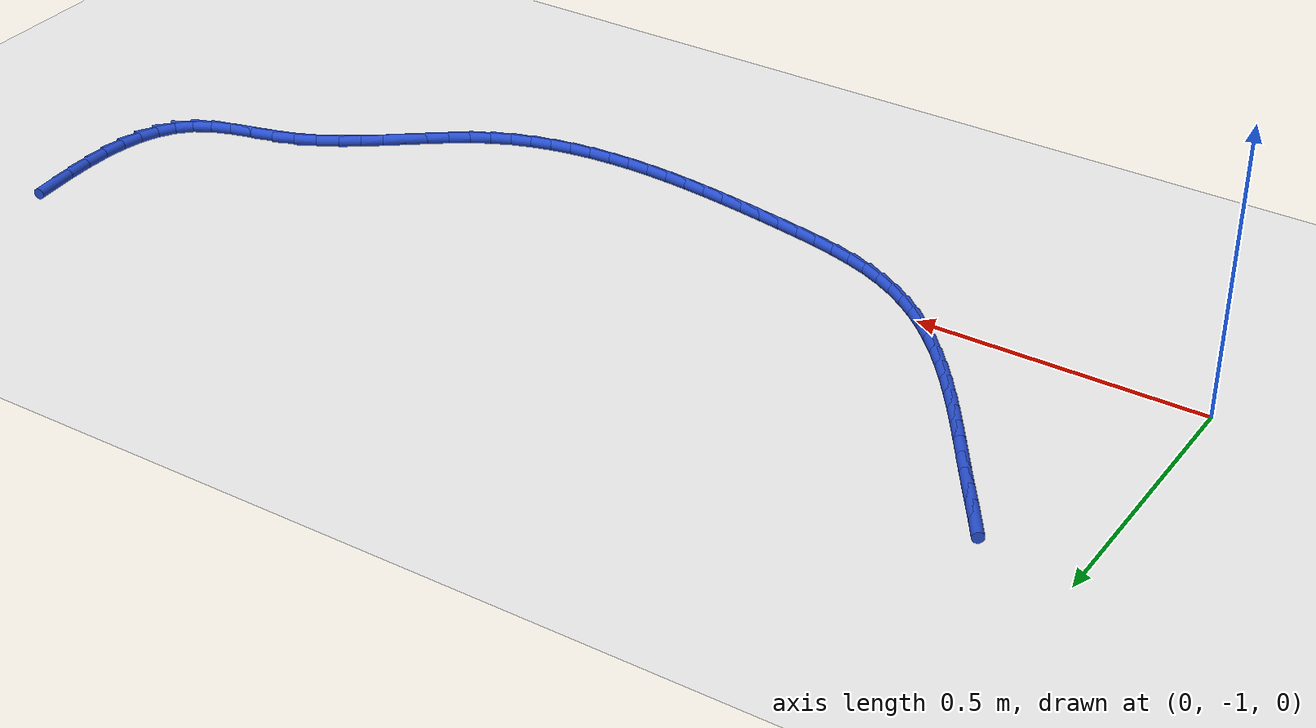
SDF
<sdf version="1.6">
 <world name="default">
  <model name="ground_plane">
   <static>1</static>
   <link name="link">
    <collision name="collision">
     <geometry><plane><normal>0 0 1</normal><size>100 100</size></plane></geometry>
     <surface><friction><ode><mu>100</mu><mu2>50</mu2></ode></friction></surface>
    </collision>
    <visual name="visual">
     <cast_shadows>0</cast_shadows>
     <geometry><plane><normal>0 0 1</normal><size>100 100</size></plane></geometry>
     <material>
      <script><uri>file://media/materials/scripts/gazebo.material</uri><name>Gazebo/WhiteGlow</name></script>
     </material>
    </visual>
   </link>
  </model>
  <model name="line">
   <link name="link_105">
    <pose>1.9537092161042269 -0.5545533523997194 0.01 0 1.57 -1.4996280599639598</pose>
    <collision name="collision">
     <geometry><cylinder><radius>0.01</radius><length>0.08</length></cylinder></geometry>
    </collision>
    <visual name="visual">
     <material>
      <script><name>Gazebo/Blue</name><uri>file://media/materials/scripts/gazebo.material</uri></script>
     </material>
     <geometry><cylinder><radius>0.01</radius><length>0.08</length></cylinder></geometry>
    </visual>
   </link>
   <link name="link_106">
    <pose>1.9569999282625978 -0.6007137367128573 0.01 0 1.57 -1.5370643470147378</pose>
    <collision name="collision">
     <geometry><cylinder><radius>0.01</radius><length>0.08</length></cylinder></geometry>
    </collision>
    <visual name="visual">
     <material>
      <script><name>Gazebo/Blue</name><uri>file://media/materials/scripts/gazebo.material</uri></script>
     </material>
     <geometry><cylinder><radius>0.01</radius><length>0.08</length></cylinder></geometry>
    </visual>
   </link>
   <link name="link_107">
    <pose>1.958518859675089 -0.6457260744144714 0.01 0 1.57 1.549415511046586</pose>
    <collision name="collision">
     <geometry><cylinder><radius>0.01</radius><length>0.08</length></cylinder></geometry>
    </collision>
    <visual name="visual">
     <material>
      <script><name>Gazebo/Blue</name><uri>file://media/materials/scripts/gazebo.material</uri></script>
     </material>
     <geometry><cylinder><radius>0.01</radius><length>0.08</length></cylinder></geometry>
    </visual>
   </link>
   <link name="link_108">
    <pose>1.957595295141753 -0.6889154366621365 0.01 0 1.57 1.4719153614329552</pose>
    <collision name="collision">
     <geometry><cylinder><radius>0.01</radius><length>0.08</length></cylinder></geometry>
    </collision>
    <visual name="visual">
     <material>
      <script><name>Gazebo/Blue</name><uri>file://media/materials/scripts/gazebo.material</uri></script>
     </material>
     <geometry><cylinder><radius>0.01</radius><length>0.08</length></cylinder></geometry>
    </visual>
   </link>
   <link name="link_109">
    <pose>1.9535585194626406 -0.7296068946134282 0.01 0 1.57 1.3652905395663109</pose>
    <collision name="collision">
     <geometry><cylinder><radius>0.01</radius><length>0.08</length></cylinder></geometry>
    </collision>
    <visual name="visual">
     <material>
      <script><name>Gazebo/Blue</name><uri>file://media/materials/scripts/gazebo.material</uri></script>
     </material>
     <geometry><cylinder><radius>0.01</radius><length>0.08</length></cylinder></geometry>
    </visual>
   </link>
   <link name="link_110">
    <pose>1.9457378174378044 -0.7671255194259193 0.01 0 1.57 1.221202096453875</pose>
    <collision name="collision">
     <geometry><cylinder><radius>0.01</radius><length>0.08</length></cylinder></geometry>
    </collision>
    <visual name="visual">
     <material>
      <script><name>Gazebo/Blue</name><uri>file://media/materials/scripts/gazebo.material</uri></script>
     </material>
     <geometry><cylinder><radius>0.01</radius><length>0.08</length></cylinder></geometry>
    </visual>
   </link>
   <link name="link_111">
    <pose>1.933462473867296 -0.8007963822571856 0.01 0 1.57 1.0326048103348477</pose>
    <collision name="collision">
     <geometry><cylinder><radius>0.01</radius><length>0.08</length></cylinder></geometry>
    </collision>
    <visual name="visual">
     <material>
      <script><name>Gazebo/Blue</name><uri>file://media/materials/scripts/gazebo.material</uri></script>
     </material>
     <geometry><cylinder><radius>0.01</radius><length>0.08</length></cylinder></geometry>
    </visual>
   </link>
   <link name="link_112">
    <pose>1.9160617735511676 -0.829944554264802 0.01 0 1.57 0.8013845607561361</pose>
    <collision name="collision">
     <geometry><cylinder><radius>0.01</radius><length>0.08</length></cylinder></geometry>
    </collision>
    <visual name="visual">
     <material>
      <script><name>Gazebo/Blue</name><uri>file://media/materials/scripts/gazebo.material</uri></script>
     </material>
     <geometry><cylinder><radius>0.01</radius><length>0.08</length></cylinder></geometry>
    </visual>
   </link>
   <link name="link_113">
    <pose>1.8928650012894708 -0.8538951066063429 0.01 0 1.57 0.5511537409102386</pose>
    <collision name="collision">
     <geometry><cylinder><radius>0.01</radius><length>0.08</length></cylinder></geometry>
    </collision>
    <visual name="visual">
     <material>
      <script><name>Gazebo/Blue</name><uri>file://media/materials/scripts/gazebo.material</uri></script>
     </material>
     <geometry><cylinder><radius>0.01</radius><length>0.08</length></cylinder></geometry>
    </visual>
   </link>
   <link name="link_114">
    <pose>1.8632935317076493 -0.8720725046539215 0.01 0 1.57 0.3651560343890318</pose>
    <collision name="collision">
     <geometry><cylinder><radius>0.01</radius><length>0.08</length></cylinder></geometry>
    </collision>
    <visual name="visual">
     <material>
      <script><name>Gazebo/Blue</name><uri>file://media/materials/scripts/gazebo.material</uri></script>
     </material>
     <geometry><cylinder><radius>0.01</radius><length>0.08</length></cylinder></geometry>
    </visual>
   </link>
   <link name="link_115">
    <pose>1.8282292783263292 -0.8854775998317526 0.01 0 1.57 0.2757150280657331</pose>
    <collision name="collision">
     <geometry><cylinder><radius>0.01</radius><length>0.08</length></cylinder></geometry>
    </collision>
    <visual name="visual">
     <material>
      <script><name>Gazebo/Blue</name><uri>file://media/materials/scripts/gazebo.material</uri></script>
     </material>
     <geometry><cylinder><radius>0.01</radius><length>0.08</length></cylinder></geometry>
    </visual>
   </link>
   <link name="link_116">
    <pose>1.7897222838180509 -0.8963720264902746 0.01 0 1.57 0.26176067926341967</pose>
    <collision name="collision">
     <geometry><cylinder><radius>0.01</radius><length>0.08</length></cylinder></geometry>
    </collision>
    <visual name="visual">
     <material>
      <script><name>Gazebo/Blue</name><uri>file://media/materials/scripts/gazebo.material</uri></script>
     </material>
     <geometry><cylinder><radius>0.01</radius><length>0.08</length></cylinder></geometry>
    </visual>
   </link>
   <link name="link_117">
    <pose>1.7498552822493372 -0.9070527033928704 0.01 0 1.57 0.31519595091957764</pose>
    <collision name="collision">
     <geometry><cylinder><radius>0.01</radius><length>0.08</length></cylinder></geometry>
    </collision>
    <visual name="visual">
     <material>
      <script><name>Gazebo/Blue</name><uri>file://media/materials/scripts/gazebo.material</uri></script>
     </material>
     <geometry><cylinder><radius>0.01</radius><length>0.08</length></cylinder></geometry>
    </visual>
   </link>
   <link name="link_118">
    <pose>1.7107108662607275 -0.919816374921484 0.01 0 1.57 0.4209795425568214</pose>
    <collision name="collision">
     <geometry><cylinder><radius>0.01</radius><length>0.08</length></cylinder></geometry>
    </collision>
    <visual name="visual">
     <material>
      <script><name>Gazebo/Blue</name><uri>file://media/materials/scripts/gazebo.material</uri></script>
     </material>
     <geometry><cylinder><radius>0.01</radius><length>0.08</length></cylinder></geometry>
    </visual>
   </link>
   <link name="link_119">
    <pose>1.6738524670407415 -0.9363196476366297 0.01 0 1.57 0.5189352445405284</pose>
    <collision name="collision">
     <geometry><cylinder><radius>0.01</radius><length>0.08</length></cylinder></geometry>
    </collision>
    <visual name="visual">
     <material>
      <script><name>Gazebo/Blue</name><uri>file://media/materials/scripts/gazebo.material</uri></script>
     </material>
     <geometry><cylinder><radius>0.01</radius><length>0.08</length></cylinder></geometry>
    </visual>
   </link>
   <link name="link_120">
    <pose>1.6391549540789039 -0.9561370933037838 0.01 0 1.57 0.5938663120360742</pose>
    <collision name="collision">
     <geometry><cylinder><radius>0.01</radius><length>0.08</length></cylinder></geometry>
    </collision>
    <visual name="visual">
     <material>
      <script><name>Gazebo/Blue</name><uri>file://media/materials/scripts/gazebo.material</uri></script>
     </material>
     <geometry><cylinder><radius>0.01</radius><length>0.08</length></cylinder></geometry>
    </visual>
   </link>
   <link name="link_121">
    <pose>1.606150486080211 -0.9784207135339213 0.01 0 1.57 0.6448560486632581</pose>
    <collision name="collision">
     <geometry><cylinder><radius>0.01</radius><length>0.08</length></cylinder></geometry>
    </collision>
    <visual name="visual">
     <material>
      <script><name>Gazebo/Blue</name><uri>file://media/materials/scripts/gazebo.material</uri></script>
     </material>
     <geometry><cylinder><radius>0.01</radius><length>0.08</length></cylinder></geometry>
    </visual>
   </link>
   <link name="link_122">
    <pose>1.5743712217496537 -1.002322509938017 0.01 0 1.57 0.6718735571702174</pose>
    <collision name="collision">
     <geometry><cylinder><radius>0.01</radius><length>0.08</length></cylinder></geometry>
    </collision>
    <visual name="visual">
     <material>
      <script><name>Gazebo/Blue</name><uri>file://media/materials/scripts/gazebo.material</uri></script>
     </material>
     <geometry><cylinder><radius>0.01</radius><length>0.08</length></cylinder></geometry>
    </visual>
   </link>
   <link name="link_123">
    <pose>1.5433493197922268 -1.026994484127047 0.01 0 1.57 0.674904585492525</pose>
    <collision name="collision">
     <geometry><cylinder><radius>0.01</radius><length>0.08</length></cylinder></geometry>
    </collision>
    <visual name="visual">
     <material>
      <script><name>Gazebo/Blue</name><uri>file://media/materials/scripts/gazebo.material</uri></script>
     </material>
     <geometry><cylinder><radius>0.01</radius><length>0.08</length></cylinder></geometry>
    </visual>
   </link>
   <link name="link_124">
    <pose>1.5126169389129236 -1.0515886377119859 0.01 0 1.57 0.6534738423226523</pose>
    <collision name="collision">
     <geometry><cylinder><radius>0.01</radius><length>0.08</length></cylinder></geometry>
    </collision>
    <visual name="visual">
     <material>
      <script><name>Gazebo/Blue</name><uri>file://media/materials/scripts/gazebo.material</uri></script>
     </material>
     <geometry><cylinder><radius>0.01</radius><length>0.08</length></cylinder></geometry>
    </visual>
   </link>
   <link name="link_125">
    <pose>1.4817062378167367 -1.0752569723038086 0.01 0 1.57 0.606560587091664</pose>
    <collision name="collision">
     <geometry><cylinder><radius>0.01</radius><length>0.08</length></cylinder></geometry>
    </collision>
    <visual name="visual">
     <material>
      <script><name>Gazebo/Blue</name><uri>file://media/materials/scripts/gazebo.material</uri></script>
     </material>
     <geometry><cylinder><radius>0.01</radius><length>0.08</length></cylinder></geometry>
    </visual>
   </link>
   <link name="link_126">
    <pose>1.4501493752086605 -1.0971514895134915 0.01 0 1.57 0.5330054640662755</pose>
    <collision name="collision">
     <geometry><cylinder><radius>0.01</radius><length>0.08</length></cylinder></geometry>
    </collision>
    <visual name="visual">
     <material>
      <script><name>Gazebo/Blue</name><uri>file://media/materials/scripts/gazebo.material</uri></script>
     </material>
     <geometry><cylinder><radius>0.01</radius><length>0.08</length></cylinder></geometry>
    </visual>
   </link>
   <link name="link_127">
    <pose>1.4174792949512058 -1.116425575239351 0.01 0 1.57 0.44146334268047427</pose>
    <collision name="collision">
     <geometry><cylinder><radius>0.01</radius><length>0.08</length></cylinder></geometry>
    </collision>
    <visual name="visual">
     <material>
      <script><name>Gazebo/Blue</name><uri>file://media/materials/scripts/gazebo.material</uri></script>
     </material>
     <geometry><cylinder><radius>0.01</radius><length>0.08</length></cylinder></geometry>
    </visual>
   </link>
   <link name="link_128">
    <pose>1.383398301954618 -1.1325312106930743 0.01 0 1.57 0.35328895639652336</pose>
    <collision name="collision">
     <geometry><cylinder><radius>0.01</radius><length>0.08</length></cylinder></geometry>
    </collision>
    <visual name="visual">
     <material>
      <script><name>Gazebo/Blue</name><uri>file://media/materials/scripts/gazebo.material</uri></script>
     </material>
     <geometry><cylinder><radius>0.01</radius><length>0.08</length></cylinder></geometry>
    </visual>
   </link>
   <link name="link_129">
    <pose>1.3479880059953808 -1.1455891179621889 0.01 0 1.57 0.2722986784520512</pose>
    <collision name="collision">
     <geometry><cylinder><radius>0.01</radius><length>0.08</length></cylinder></geometry>
    </collision>
    <visual name="visual">
     <material>
      <script><name>Gazebo/Blue</name><uri>file://media/materials/scripts/gazebo.material</uri></script>
     </material>
     <geometry><cylinder><radius>0.01</radius><length>0.08</length></cylinder></geometry>
    </visual>
   </link>
   <link name="link_130">
    <pose>1.3113815628900756 -1.1558108983901172 0.01 0 1.57 0.19901254862862905</pose>
    <collision name="collision">
     <geometry><cylinder><radius>0.01</radius><length>0.08</length></cylinder></geometry>
    </collision>
    <visual name="visual">
     <material>
      <script><name>Gazebo/Blue</name><uri>file://media/materials/scripts/gazebo.material</uri></script>
     </material>
     <geometry><cylinder><radius>0.01</radius><length>0.08</length></cylinder></geometry>
    </visual>
   </link>
   <link name="link_131">
    <pose>1.2737121284552817 -1.1634081533202816 0.01 0 1.57 0.13351261511136386</pose>
    <collision name="collision">
     <geometry><cylinder><radius>0.01</radius><length>0.08</length></cylinder></geometry>
    </collision>
    <visual name="visual">
     <material>
      <script><name>Gazebo/Blue</name><uri>file://media/materials/scripts/gazebo.material</uri></script>
     </material>
     <geometry><cylinder><radius>0.01</radius><length>0.08</length></cylinder></geometry>
    </visual>
   </link>
   <link name="link_132">
    <pose>1.235112858507581 -1.168592484096103 0.01 0 1.57 0.07557443551612951</pose>
    <collision name="collision">
     <geometry><cylinder><radius>0.01</radius><length>0.08</length></cylinder></geometry>
    </collision>
    <visual name="visual">
     <material>
      <script><name>Gazebo/Blue</name><uri>file://media/materials/scripts/gazebo.material</uri></script>
     </material>
     <geometry><cylinder><radius>0.01</radius><length>0.08</length></cylinder></geometry>
    </visual>
   </link>
   <link name="link_133">
    <pose>1.1957169088635544 -1.171575492061004 0.01 0 1.57 0.024790216280307194</pose>
    <collision name="collision">
     <geometry><cylinder><radius>0.01</radius><length>0.08</length></cylinder></geometry>
    </collision>
    <visual name="visual">
     <material>
      <script><name>Gazebo/Blue</name><uri>file://media/materials/scripts/gazebo.material</uri></script>
     </material>
     <geometry><cylinder><radius>0.01</radius><length>0.08</length></cylinder></geometry>
    </visual>
   </link>
   <link name="link_134">
    <pose>1.1556574353397815 -1.1725687785584065 0.01 0 1.57 -0.019333306299664867</pose>
    <collision name="collision">
     <geometry><cylinder><radius>0.01</radius><length>0.08</length></cylinder></geometry>
    </collision>
    <visual name="visual">
     <material>
      <script><name>Gazebo/Blue</name><uri>file://media/materials/scripts/gazebo.material</uri></script>
     </material>
     <geometry><cylinder><radius>0.01</radius><length>0.08</length></cylinder></geometry>
    </visual>
   </link>
   <link name="link_135">
    <pose>1.1150675937528438 -1.1717839449317318 0.01 0 1.57 -0.05730536234467141</pose>
    <collision name="collision">
     <geometry><cylinder><radius>0.01</radius><length>0.08</length></cylinder></geometry>
    </collision>
    <visual name="visual">
     <material>
      <script><name>Gazebo/Blue</name><uri>file://media/materials/scripts/gazebo.material</uri></script>
     </material>
     <geometry><cylinder><radius>0.01</radius><length>0.08</length></cylinder></geometry>
    </visual>
   </link>
   <link name="link_136">
    <pose>1.0740805399193214 -1.1694325925244025 0.01 0 1.57 -0.08960595274840165</pose>
    <collision name="collision">
     <geometry><cylinder><radius>0.01</radius><length>0.08</length></cylinder></geometry>
    </collision>
    <visual name="visual">
     <material>
      <script><name>Gazebo/Blue</name><uri>file://media/materials/scripts/gazebo.material</uri></script>
     </material>
     <geometry><cylinder><radius>0.01</radius><length>0.08</length></cylinder></geometry>
    </visual>
   </link>
   <link name="link_137">
    <pose>1.0328294296557947 -1.1657263226798402 0.01 0 1.57 -0.11665857102441952</pose>
    <collision name="collision">
     <geometry><cylinder><radius>0.01</radius><length>0.08</length></cylinder></geometry>
    </collision>
    <visual name="visual">
     <material>
      <script><name>Gazebo/Blue</name><uri>file://media/materials/scripts/gazebo.material</uri></script>
     </material>
     <geometry><cylinder><radius>0.01</radius><length>0.08</length></cylinder></geometry>
    </visual>
   </link>
   <link name="link_138">
    <pose>0.9914474187788457 -1.1608767367414674 0.01 0 1.57 -0.13881470546060395</pose>
    <collision name="collision">
     <geometry><cylinder><radius>0.01</radius><length>0.08</length></cylinder></geometry>
    </collision>
    <visual name="visual">
     <material>
      <script><name>Gazebo/Blue</name><uri>file://media/materials/scripts/gazebo.material</uri></script>
     </material>
     <geometry><cylinder><radius>0.01</radius><length>0.08</length></cylinder></geometry>
    </visual>
   </link>
   <link name="link_139">
    <pose>0.9500676631050541 -1.155095436052705 0.01 0 1.57 -0.15634517902697484</pose>
    <collision name="collision">
     <geometry><cylinder><radius>0.01</radius><length>0.08</length></cylinder></geometry>
    </collision>
    <visual name="visual">
     <material>
      <script><name>Gazebo/Blue</name><uri>file://media/materials/scripts/gazebo.material</uri></script>
     </material>
     <geometry><cylinder><radius>0.01</radius><length>0.08</length></cylinder></geometry>
    </visual>
   </link>
   <link name="link_140">
    <pose>0.9088233184510008 -1.1485940219569757 0.01 0 1.57 -0.16943465707100916</pose>
    <collision name="collision">
     <geometry><cylinder><radius>0.01</radius><length>0.08</length></cylinder></geometry>
    </collision>
    <visual name="visual">
     <material>
      <script><name>Gazebo/Blue</name><uri>file://media/materials/scripts/gazebo.material</uri></script>
     </material>
     <geometry><cylinder><radius>0.01</radius><length>0.08</length></cylinder></geometry>
    </visual>
   </link>
   <link name="link_141">
    <pose>0.8678475406332669 -1.1415840957977015 0.01 0 1.57 -0.17841436752566503</pose>
    <collision name="collision">
     <geometry><cylinder><radius>0.01</radius><length>0.08</length></cylinder></geometry>
    </collision>
    <visual name="visual">
     <material>
      <script><name>Gazebo/Blue</name><uri>file://media/materials/scripts/gazebo.material</uri></script>
     </material>
     <geometry><cylinder><radius>0.01</radius><length>0.08</length></cylinder></geometry>
    </visual>
   </link>
   <link name="link_142">
    <pose>0.8272743501418509 -1.1342674567760076 0.01 0 1.57 -0.19027052335182737</pose>
    <collision name="collision">
     <geometry><cylinder><radius>0.01</radius><length>0.08</length></cylinder></geometry>
    </collision>
    <visual name="visual">
     <material>
      <script><name>Gazebo/Blue</name><uri>file://media/materials/scripts/gazebo.material</uri></script>
     </material>
     <geometry><cylinder><radius>0.01</radius><length>0.08</length></cylinder></geometry>
    </visual>
   </link>
   <link name="link_143">
    <pose>0.7872628791422078 -1.1265612322036818 0.01 0 1.57 -0.2132212050335201</pose>
    <collision name="collision">
     <geometry><cylinder><radius>0.01</radius><length>0.08</length></cylinder></geometry>
    </collision>
    <visual name="visual">
     <material>
      <script><name>Gazebo/Blue</name><uri>file://media/materials/scripts/gazebo.material</uri></script>
     </material>
     <geometry><cylinder><radius>0.01</radius><length>0.08</length></cylinder></geometry>
    </visual>
   </link>
   <link name="link_144">
    <pose>0.7480006703603296 -1.118060480561943 0.01 0 1.57 -0.24832975518132386</pose>
    <collision name="collision">
     <geometry><cylinder><radius>0.01</radius><length>0.08</length></cylinder></geometry>
    </collision>
    <visual name="visual">
     <material>
      <script><name>Gazebo/Blue</name><uri>file://media/materials/scripts/gazebo.material</uri></script>
     </material>
     <geometry><cylinder><radius>0.01</radius><length>0.08</length></cylinder></geometry>
    </visual>
   </link>
   <link name="link_145">
    <pose>0.7096767941251361 -1.108342943064109 0.01 0 1.57 -0.29632432621645266</pose>
    <collision name="collision">
     <geometry><cylinder><radius>0.01</radius><length>0.08</length></cylinder></geometry>
    </collision>
    <visual name="visual">
     <material>
      <script><name>Gazebo/Blue</name><uri>file://media/materials/scripts/gazebo.material</uri></script>
     </material>
     <geometry><cylinder><radius>0.01</radius><length>0.08</length></cylinder></geometry>
    </visual>
   </link>
   <link name="link_146">
    <pose>0.6724803207655465 -1.096986360923498 0.01 0 1.57 -0.35786348549636154</pose>
    <collision name="collision">
     <geometry><cylinder><radius>0.01</radius><length>0.08</length></cylinder></geometry>
    </collision>
    <visual name="visual">
     <material>
      <script><name>Gazebo/Blue</name><uri>file://media/materials/scripts/gazebo.material</uri></script>
     </material>
     <geometry><cylinder><radius>0.01</radius><length>0.08</length></cylinder></geometry>
    </visual>
   </link>
   <link name="link_147">
    <pose>0.6366003206104814 -1.0835684753534287 0.01 0 1.57 -0.43327692642013604</pose>
    <collision name="collision">
     <geometry><cylinder><radius>0.01</radius><length>0.08</length></cylinder></geometry>
    </collision>
    <visual name="visual">
     <material>
      <script><name>Gazebo/Blue</name><uri>file://media/materials/scripts/gazebo.material</uri></script>
     </material>
     <geometry><cylinder><radius>0.01</radius><length>0.08</length></cylinder></geometry>
    </visual>
   </link>
   <link name="link_148">
    <pose>0.6022258413090406 -1.067667075651871 0.01 0 1.57 -0.5182210977886621</pose>
    <collision name="collision">
     <geometry><cylinder><radius>0.01</radius><length>0.08</length></cylinder></geometry>
    </collision>
    <visual name="visual">
     <material>
      <script><name>Gazebo/Blue</name><uri>file://media/materials/scripts/gazebo.material</uri></script>
     </material>
     <geometry><cylinder><radius>0.01</radius><length>0.08</length></cylinder></geometry>
    </visual>
   </link>
   <link name="link_149">
    <pose>0.569481638251013 -1.048996260449091 0.01 0 1.57 -0.5989160562449624</pose>
    <collision name="collision">
     <geometry><cylinder><radius>0.01</radius><length>0.08</length></cylinder></geometry>
    </collision>
    <visual name="visual">
     <material>
      <script><name>Gazebo/Blue</name><uri>file://media/materials/scripts/gazebo.material</uri></script>
     </material>
     <geometry><cylinder><radius>0.01</radius><length>0.08</length></cylinder></geometry>
    </visual>
   </link>
   <link name="link_150">
    <pose>0.5382874590082003 -1.0277047760154188 0.01 0 1.57 -0.6719655195441476</pose>
    <collision name="collision">
     <geometry><cylinder><radius>0.01</radius><length>0.08</length></cylinder></geometry>
    </collision>
    <visual name="visual">
     <material>
      <script><name>Gazebo/Blue</name><uri>file://media/materials/scripts/gazebo.material</uri></script>
     </material>
     <geometry><cylinder><radius>0.01</radius><length>0.08</length></cylinder></geometry>
    </visual>
   </link>
   <link name="link_151">
    <pose>0.5085222781732748 -1.0040278135154872 0.01 0 1.57 -0.736988290739917</pose>
    <collision name="collision">
     <geometry><cylinder><radius>0.01</radius><length>0.08</length></cylinder></geometry>
    </collision>
    <visual name="visual">
     <material>
      <script><name>Gazebo/Blue</name><uri>file://media/materials/scripts/gazebo.material</uri></script>
     </material>
     <geometry><cylinder><radius>0.01</radius><length>0.08</length></cylinder></geometry>
    </visual>
   </link>
   <link name="link_152">
    <pose>0.48006507033890805 -0.97820056411393 0.01 0 1.57 -0.7939793477733404</pose>
    <collision name="collision">
     <geometry><cylinder><radius>0.01</radius><length>0.08</length></cylinder></geometry>
    </collision>
    <visual name="visual">
     <material>
      <script><name>Gazebo/Blue</name><uri>file://media/materials/scripts/gazebo.material</uri></script>
     </material>
     <geometry><cylinder><radius>0.01</radius><length>0.08</length></cylinder></geometry>
    </visual>
   </link>
   <link name="link_153">
    <pose>0.45279481009777217 -0.9504582189753806 0.01 0 1.57 -0.8431822097654963</pose>
    <collision name="collision">
     <geometry><cylinder><radius>0.01</radius><length>0.08</length></cylinder></geometry>
    </collision>
    <visual name="visual">
     <material>
      <script><name>Gazebo/Blue</name><uri>file://media/materials/scripts/gazebo.material</uri></script>
     </material>
     <geometry><cylinder><radius>0.01</radius><length>0.08</length></cylinder></geometry>
    </visual>
   </link>
   <link name="link_154">
    <pose>0.42659047204253886 -0.9210359692644728 0.01 0 1.57 -0.8849765203463815</pose>
    <collision name="collision">
     <geometry><cylinder><radius>0.01</radius><length>0.08</length></cylinder></geometry>
    </collision>
    <visual name="visual">
     <material>
      <script><name>Gazebo/Blue</name><uri>file://media/materials/scripts/gazebo.material</uri></script>
     </material>
     <geometry><cylinder><radius>0.01</radius><length>0.08</length></cylinder></geometry>
    </visual>
   </link>
   <link name="link_155">
    <pose>0.40133103076588106 -0.8901690061458407 0.01 0 1.57 -0.9197917447030833</pose>
    <collision name="collision">
     <geometry><cylinder><radius>0.01</radius><length>0.08</length></cylinder></geometry>
    </collision>
    <visual name="visual">
     <material>
      <script><name>Gazebo/Blue</name><uri>file://media/materials/scripts/gazebo.material</uri></script>
     </material>
     <geometry><cylinder><radius>0.01</radius><length>0.08</length></cylinder></geometry>
    </visual>
   </link>
   <link name="link_156">
    <pose>0.37689546086047016 -0.8580925207841177 0.01 0 1.57 -0.9480470258591362</pose>
    <collision name="collision">
     <geometry><cylinder><radius>0.01</radius><length>0.08</length></cylinder></geometry>
    </collision>
    <visual name="visual">
     <material>
      <script><name>Gazebo/Blue</name><uri>file://media/materials/scripts/gazebo.material</uri></script>
     </material>
     <geometry><cylinder><radius>0.01</radius><length>0.08</length></cylinder></geometry>
    </visual>
   </link>
   <link name="link_157">
    <pose>0.35316273691897826 -0.825041704343937 0.01 0 1.57 -0.9701122320913281</pose>
    <collision name="collision">
     <geometry><cylinder><radius>0.01</radius><length>0.08</length></cylinder></geometry>
    </collision>
    <visual name="visual">
     <material>
      <script><name>Gazebo/Blue</name><uri>file://media/materials/scripts/gazebo.material</uri></script>
     </material>
     <geometry><cylinder><radius>0.01</radius><length>0.08</length></cylinder></geometry>
    </visual>
   </link>
   <link name="link_158">
    <pose>0.33001183353407737 -0.7912517479899326 0.01 0 1.57 -0.9862840554711796</pose>
    <collision name="collision">
     <geometry><cylinder><radius>0.01</radius><length>0.08</length></cylinder></geometry>
    </collision>
    <visual name="visual">
     <material>
      <script><name>Gazebo/Blue</name><uri>file://media/materials/scripts/gazebo.material</uri></script>
     </material>
     <geometry><cylinder><radius>0.01</radius><length>0.08</length></cylinder></geometry>
    </visual>
   </link>
   <link name="link_159">
    <pose>0.30732172529843904 -0.7569578428867375 0.01 0 1.57 -0.9967717100173532</pose>
    <collision name="collision">
     <geometry><cylinder><radius>0.01</radius><length>0.08</length></cylinder></geometry>
    </collision>
    <visual name="visual">
     <material>
      <script><name>Gazebo/Blue</name><uri>file://media/materials/scripts/gazebo.material</uri></script>
     </material>
     <geometry><cylinder><radius>0.01</radius><length>0.08</length></cylinder></geometry>
    </visual>
   </link>
   <link name="link_160">
    <pose>0.28497138680473616 -0.7223951801989866 0.01 0 1.57 -1.001688065505278</pose>
    <collision name="collision">
     <geometry><cylinder><radius>0.01</radius><length>0.08</length></cylinder></geometry>
    </collision>
    <visual name="visual">
     <material>
      <script><name>Gazebo/Blue</name><uri>file://media/materials/scripts/gazebo.material</uri></script>
     </material>
     <geometry><cylinder><radius>0.01</radius><length>0.08</length></cylinder></geometry>
    </visual>
   </link>
   <link name="link_161">
    <pose>0.2628397926456403 -0.6877989510913125 0.01 0 1.57 -1.0010433403911463</pose>
    <collision name="collision">
     <geometry><cylinder><radius>0.01</radius><length>0.08</length></cylinder></geometry>
    </collision>
    <visual name="visual">
     <material>
      <script><name>Gazebo/Blue</name><uri>file://media/materials/scripts/gazebo.material</uri></script>
     </material>
     <geometry><cylinder><radius>0.01</radius><length>0.08</length></cylinder></geometry>
    </visual>
   </link>
   <link name="link_162">
    <pose>0.24080591741382343 -0.6534043467283494 0.01 0 1.57 -0.9954036702465424</pose>
    <collision name="collision">
     <geometry><cylinder><radius>0.01</radius><length>0.08</length></cylinder></geometry>
    </collision>
    <visual name="visual">
     <material>
      <script><name>Gazebo/Blue</name><uri>file://media/materials/scripts/gazebo.material</uri></script>
     </material>
     <geometry><cylinder><radius>0.01</radius><length>0.08</length></cylinder></geometry>
    </visual>
   </link>
   <link name="link_163">
    <pose>0.2187665206572739 -0.6194245622461261 0.01 0 1.57 -0.9918029930410461</pose>
    <collision name="collision">
     <geometry><cylinder><radius>0.01</radius><length>0.08</length></cylinder></geometry>
    </collision>
    <visual name="visual">
     <material>
      <script><name>Gazebo/Blue</name><uri>file://media/materials/scripts/gazebo.material</uri></script>
     </material>
     <geometry><cylinder><radius>0.01</radius><length>0.08</length></cylinder></geometry>
    </visual>
   </link>
   <link name="link_164">
    <pose>0.19680917311389304 -0.5858368018368223 0.01 0 1.57 -0.9947046666992841</pose>
    <collision name="collision">
     <geometry><cylinder><radius>0.01</radius><length>0.08</length></cylinder></geometry>
    </collision>
    <visual name="visual">
     <material>
      <script><name>Gazebo/Blue</name><uri>file://media/materials/scripts/gazebo.material</uri></script>
     </material>
     <geometry><cylinder><radius>0.01</radius><length>0.08</length></cylinder></geometry>
    </visual>
   </link>
   <link name="link_165">
    <pose>0.17513738079315358 -0.5524748835831546 0.01 0 1.57 -1.0043350574047893</pose>
    <collision name="collision">
     <geometry><cylinder><radius>0.01</radius><length>0.08</length></cylinder></geometry>
    </collision>
    <visual name="visual">
     <material>
      <script><name>Gazebo/Blue</name><uri>file://media/materials/scripts/gazebo.material</uri></script>
     </material>
     <geometry><cylinder><radius>0.01</radius><length>0.08</length></cylinder></geometry>
    </visual>
   </link>
  </model>
 </world>
</sdf>
